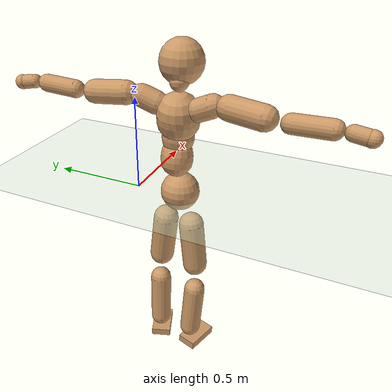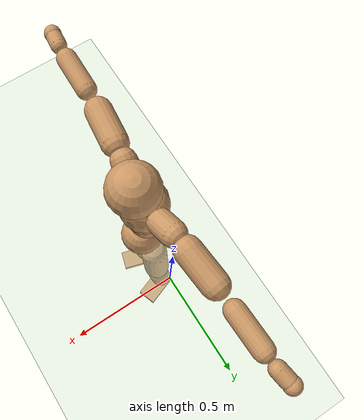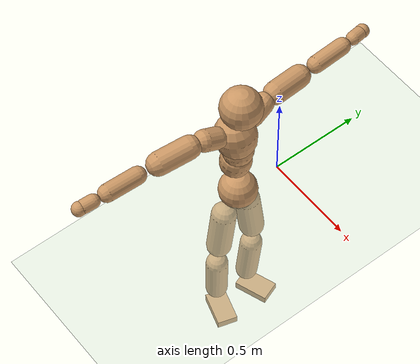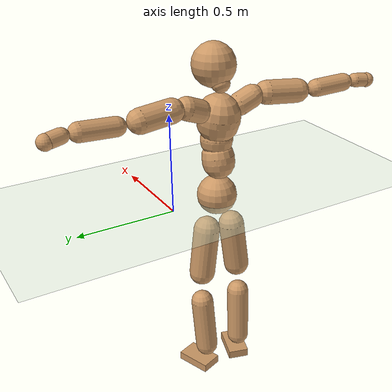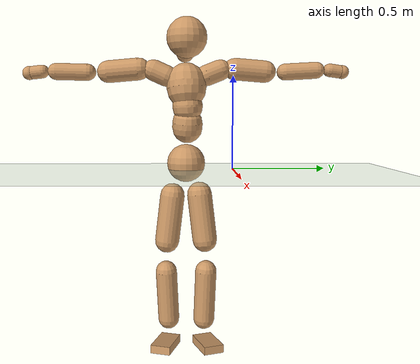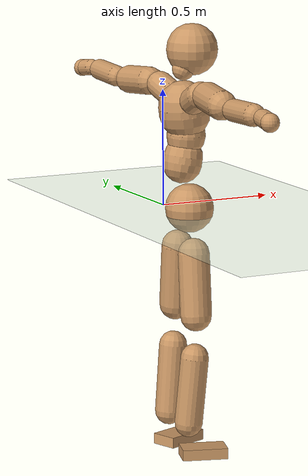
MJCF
<mujoco model="humanoid">
  <compiler coordinate="local"/>
  <default>
    <joint damping="0.0" armature="0.01" stiffness="0.0" limited="true"/>
    <geom conaffinity="1" condim="3" contype="7" margin="0.001" rgba="0.8 0.6 .4 1"/>
  </default>
  <asset>
    <texture type="skybox" builtin="gradient" rgb1=".4 .5 .6" rgb2="0 0 0" width="100" height="100"/>
    <texture builtin="flat" height="1278" mark="cross" markrgb="1 1 1" name="texgeom" random="0.01" rgb1="0.8 0.6 0.4" rgb2="0.8 0.6 0.4" type="cube" width="127"/>
    <texture builtin="checker" height="100" name="texplane" rgb1="0 0 0" rgb2="0.8 0.8 0.8" type="2d" width="100"/>
    <material name="MatPlane" reflectance="0.5" shininess="1" specular="1" texrepeat="60 60" texture="texplane"/>
    <material name="geom" texture="texgeom" texuniform="true"/>
  </asset>
  <worldbody>
    <light cutoff="100" diffuse="1 1 1" dir="-0 0 -1.3" directional="true" exponent="1" pos="0 0 1.3" specular=".1 .1 .1"/>
    <geom conaffinity="1" condim="3" name="floor" pos="0 0 0" rgba="0.8 0.9 0.8 1" size="100 100 .2" type="plane" material="MatPlane"/>
    <body name="Pelvis" pos="-0.0015 -0.252 0.031">
      <freejoint name="Pelvis"/>
      <geom type="sphere" contype="1" conaffinity="1" density="500" size="0.1030" pos="0.0000 0.0000 0.0000" name="Pelvis"/>
      <body name="L_Hip" pos="-0.02 0.0638 -0.0877">
        <joint name="L_Hip_x" type="hinge" pos="0 0 0" axis="1 0 0" stiffness="800" damping="80" armature="0.02" range="-180.0000 180.0000"/>
        <joint name="L_Hip_y" type="hinge" pos="0 0 0" axis="0 1 0" stiffness="800" damping="80" armature="0.02" range="-180.0000 180.0000"/>
        <joint name="L_Hip_z" type="hinge" pos="0 0 0" axis="0 0 1" stiffness="800" damping="80" armature="0.02" range="-180.0000 180.0000"/>
        <geom type="capsule" contype="1" conaffinity="1" density="500" fromto="0.0014 0.0102 -0.0860 0.0054 0.0407 -0.3441" size="0.0678" name="L_Hip"/>
        <body name="L_Knee" pos="0.0068 0.0508 -0.4302">
          <joint name="L_Knee_x" type="hinge" pos="0 0 0" axis="1 0 0" stiffness="800" damping="80" armature="0.02" range="-180.0000 180.0000"/>
          <joint name="L_Knee_y" type="hinge" pos="0 0 0" axis="0 1 0" stiffness="800" damping="80" armature="0.02" range="-180.0000 180.0000"/>
          <joint name="L_Knee_z" type="hinge" pos="0 0 0" axis="0 0 1" stiffness="800" damping="80" armature="0.02" range="-180.0000 180.0000"/>
          <geom type="capsule" contype="1" conaffinity="1" density="500" fromto="-0.0081 -0.0031 -0.0958 -0.0324 -0.0126 -0.3831" size="0.0597" name="L_Knee"/>
          <body name="L_Ankle" pos="-0.0405 -0.0157 -0.4789">
            <joint name="L_Ankle_x" type="hinge" pos="0 0 0" axis="1 0 0" stiffness="800" damping="80" armature="0.02" range="-180.0000 180.0000"/>
            <joint name="L_Ankle_y" type="hinge" pos="0 0 0" axis="0 1 0" stiffness="800" damping="80" armature="0.02" range="-180.0000 180.0000"/>
            <joint name="L_Ankle_z" type="hinge" pos="0 0 0" axis="0 0 1" stiffness="800" damping="80" armature="0.02" range="-180.0000 180.0000"/>
            <geom type="box" contype="1" conaffinity="1" density="500" pos="0.0652 0.0233 -0.0334" size="0.095 0.0567 0.0227" quat="0.9853 0.0000 0.0000 0.1711" name="L_Ankle"/>
            <body name="L_Toe" pos="0.1303 0.0467 -0.0668">
              <joint name="L_Toe_x" type="hinge" pos="0 0 0" axis="1 0 0" stiffness="500" damping="50" armature="0.02" range="-180.0000 180.0000"/>
              <joint name="L_Toe_y" type="hinge" pos="0 0 0" axis="0 1 0" stiffness="500" damping="50" armature="0.02" range="-180.0000 180.0000"/>
              <joint name="L_Toe_z" type="hinge" pos="0 0 0" axis="0 0 1" stiffness="500" damping="50" armature="0.02" range="-180.0000 180.0000"/>
              <geom type="box" contype="1" conaffinity="1" density="500" pos="0.0000 0.0000 0.0337" size="0.0011 0.0027 0.0012" quat="0.9845 0.0000 0.0000 0.1753" name="L_Toe"/>
            </body>
          </body>
        </body>
      </body>
      <body name="R_Hip" pos="-0.0168 -0.0653 -0.0954">
        <joint name="R_Hip_x" type="hinge" pos="0 0 0" axis="1 0 0" stiffness="800" damping="80" armature="0.02" range="-180.0000 180.0000"/>
        <joint name="R_Hip_y" type="hinge" pos="0 0 0" axis="0 1 0" stiffness="800" damping="80" armature="0.02" range="-180.0000 180.0000"/>
        <joint name="R_Hip_z" type="hinge" pos="0 0 0" axis="0 0 1" stiffness="800" damping="80" armature="0.02" range="-180.0000 180.0000"/>
        <geom type="capsule" contype="1" conaffinity="1" density="500" fromto="-0.0015 -0.0102 -0.0857 -0.0059 -0.0408 -0.3429" size="0.067" name="R_Hip"/>
        <body name="R_Knee" pos="-0.0074 -0.051 -0.4287">
          <joint name="R_Knee_x" type="hinge" pos="0 0 0" axis="1 0 0" stiffness="800" damping="80" armature="0.02" range="-180.0000 180.0000"/>
          <joint name="R_Knee_y" type="hinge" pos="0 0 0" axis="0 1 0" stiffness="800" damping="80" armature="0.02" range="-180.0000 180.0000"/>
          <joint name="R_Knee_z" type="hinge" pos="0 0 0" axis="0 0 1" stiffness="800" damping="80" armature="0.02" range="-180.0000 180.0000"/>
          <geom type="capsule" contype="1" conaffinity="1" density="500" fromto="-0.0075 0.0042 -0.0946 -0.0299 0.0166 -0.3785" size="0.0595" name="R_Knee"/>
          <body name="R_Ankle" pos="-0.0374 0.0208 -0.4731">
            <joint name="R_Ankle_x" type="hinge" pos="0 0 0" axis="1 0 0" stiffness="800" damping="80" armature="0.02" range="-180.0000 180.0000"/>
            <joint name="R_Ankle_y" type="hinge" pos="0 0 0" axis="0 1 0" stiffness="800" damping="80" armature="0.02" range="-180.0000 180.0000"/>
            <joint name="R_Ankle_z" type="hinge" pos="0 0 0" axis="0 0 1" stiffness="800" damping="80" armature="0.02" range="-180.0000 180.0000"/>
            <geom type="box" contype="1" conaffinity="1" density="500" pos="0.0694 -0.0209 -0.0346" size="0.0965 0.0557 0.023" quat="0.9894 0.0000 0.0000 -0.1455" name="R_Ankle"/>
            <body name="R_Toe" pos="0.1388 -0.0417 -0.0692">
              <joint name="R_Toe_x" type="hinge" pos="0 0 0" axis="1 0 0" stiffness="500" damping="50" armature="0.02" range="-180.0000 180.0000"/>
              <joint name="R_Toe_y" type="hinge" pos="0 0 0" axis="0 1 0" stiffness="500" damping="50" armature="0.02" range="-180.0000 180.0000"/>
              <joint name="R_Toe_z" type="hinge" pos="0 0 0" axis="0 0 1" stiffness="500" damping="50" armature="0.02" range="-180.0000 180.0000"/>
              <geom type="box" contype="1" conaffinity="1" density="500" pos="0.0000 0.0000 0.0353" size="0.0011 0.0026 0.0012" quat="0.9906 0.0000 0.0000 -0.1371" name="R_Toe"/>
            </body>
          </body>
        </body>
      </body>
      <body name="Torso" pos="-0.0423 0.0049 0.1315">
        <joint name="Torso_x" type="hinge" pos="0 0 0" axis="1 0 0" stiffness="1000" damping="100" armature="0.02" range="-180.0000 180.0000"/>
        <joint name="Torso_y" type="hinge" pos="0 0 0" axis="0 1 0" stiffness="1000" damping="100" armature="0.02" range="-180.0000 180.0000"/>
        <joint name="Torso_z" type="hinge" pos="0 0 0" axis="0 0 1" stiffness="1000" damping="100" armature="0.02" range="-180.0000 180.0000"/>
        <geom type="capsule" contype="1" conaffinity="1" density="500" fromto="0.0171 0.0024 0.0879 0.0114 0.0016 0.0586" size="0.0821" name="Torso"/>
        <body name="Spine" pos="0.0286 0.0041 0.1465">
          <joint name="Spine_x" type="hinge" pos="0 0 0" axis="1 0 0" stiffness="1000" damping="100" armature="0.02" range="-180.0000 180.0000"/>
          <joint name="Spine_y" type="hinge" pos="0 0 0" axis="0 1 0" stiffness="1000" damping="100" armature="0.02" range="-180.0000 180.0000"/>
          <joint name="Spine_z" type="hinge" pos="0 0 0" axis="0 0 1" stiffness="1000" damping="100" armature="0.02" range="-180.0000 180.0000"/>
          <geom type="capsule" contype="1" conaffinity="1" density="500" fromto="0.0013 -0.0017 0.0359 0.0009 -0.0011 0.0240" size="0.0815" name="Spine"/>
          <body name="Chest" pos="0.0022 -0.0029 0.0599">
            <joint name="Chest_x" type="hinge" pos="0 0 0" axis="1 0 0" stiffness="1000" damping="100" armature="0.02" range="-180.0000 180.0000"/>
            <joint name="Chest_y" type="hinge" pos="0 0 0" axis="0 1 0" stiffness="1000" damping="100" armature="0.02" range="-180.0000 180.0000"/>
            <joint name="Chest_z" type="hinge" pos="0 0 0" axis="0 0 1" stiffness="1000" damping="100" armature="0.02" range="-180.0000 180.0000"/>
            <geom type="capsule" contype="1" conaffinity="1" density="500" fromto="-0.0145 -0.0049 0.0951 -0.0097 -0.0033 0.0634" size="0.1073" name="Chest"/>
            <body name="Neck" pos="-0.0319 -0.0135 0.2312">
              <joint name="Neck_x" type="hinge" pos="0 0 0" axis="1 0 0" stiffness="500" damping="50" armature="0.02" range="-180.0000 180.0000"/>
              <joint name="Neck_y" type="hinge" pos="0 0 0" axis="0 1 0" stiffness="500" damping="50" armature="0.02" range="-180.0000 180.0000"/>
              <joint name="Neck_z" type="hinge" pos="0 0 0" axis="0 0 1" stiffness="500" damping="50" armature="0.02" range="-180.0000 180.0000"/>
              <geom type="capsule" contype="1" conaffinity="1" density="500" fromto="0.0113 0.0022 0.0196 0.0453 0.0089 0.0786" size="0.0472" name="Neck"/>
              <body name="Head" pos="0.0566 0.0112 0.0982">
                <joint name="Head_x" type="hinge" pos="0 0 0" axis="1 0 0" stiffness="500" damping="50" armature="0.02" range="-180.0000 180.0000"/>
                <joint name="Head_y" type="hinge" pos="0 0 0" axis="0 1 0" stiffness="500" damping="50" armature="0.02" range="-180.0000 180.0000"/>
                <joint name="Head_z" type="hinge" pos="0 0 0" axis="0 0 1" stiffness="500" damping="50" armature="0.02" range="-180.0000 180.0000"/>
                <geom type="sphere" contype="1" conaffinity="1" density="500" size="0.1083" pos="0.0000 0.0000 0.0000" name="Head"/>
              </body>
            </body>
            <body name="L_Thorax" pos="-0.0173 0.0766 0.1231">
              <joint name="L_Thorax_x" type="hinge" pos="0 0 0" axis="1 0 0" stiffness="500" damping="50" armature="0.02" range="-180.0000 180.0000"/>
              <joint name="L_Thorax_y" type="hinge" pos="0 0 0" axis="0 1 0" stiffness="500" damping="50" armature="0.02" range="-180.0000 180.0000"/>
              <joint name="L_Thorax_z" type="hinge" pos="0 0 0" axis="0 0 1" stiffness="500" damping="50" armature="0.02" range="-180.0000 180.0000"/>
              <geom type="capsule" contype="1" conaffinity="1" density="500" fromto="-0.0039 0.0255 0.0101 -0.0157 0.1018 0.0405" size="0.0569" name="L_Thorax"/>
              <body name="L_Shoulder" pos="-0.0196 0.1273 0.0507">
                <joint name="L_Shoulder_x" type="hinge" pos="0 0 0" axis="1 0 0" stiffness="500" damping="50" armature="0.02" range="-720.0000 720.0000"/>
                <joint name="L_Shoulder_y" type="hinge" pos="0 0 0" axis="0 1 0" stiffness="500" damping="50" armature="0.02" range="-720.0000 720.0000"/>
                <joint name="L_Shoulder_z" type="hinge" pos="0 0 0" axis="0 0 1" stiffness="500" damping="50" armature="0.02" range="-720.0000 720.0000"/>
                <geom type="capsule" contype="1" conaffinity="1" density="500" fromto="-0.0052 0.0552 -0.0041 -0.0209 0.2208 -0.0165" size="0.0597" name="L_Shoulder"/>
                <body name="L_Elbow" pos="-0.0262 0.276 -0.0207">
                  <joint name="L_Elbow_x" type="hinge" pos="0 0 0" axis="1 0 0" stiffness="500" damping="50" armature="0.02" range="-720.0000 720.0000"/>
                  <joint name="L_Elbow_y" type="hinge" pos="0 0 0" axis="0 1 0" stiffness="500" damping="50" armature="0.02" range="-720.0000 720.0000"/>
                  <joint name="L_Elbow_z" type="hinge" pos="0 0 0" axis="0 0 1" stiffness="500" damping="50" armature="0.02" range="-720.0000 720.0000"/>
                  <geom type="capsule" contype="1" conaffinity="1" density="500" fromto="-0.0012 0.0570 0.0031 -0.0048 0.2281 0.0125" size="0.0451" name="L_Elbow"/>
                  <body name="L_Wrist" pos="-0.006 0.2852 0.0156">
                    <joint name="L_Wrist_x" type="hinge" pos="0 0 0" axis="1 0 0" stiffness="300" damping="30" armature="0.02" range="-180.0000 180.0000"/>
                    <joint name="L_Wrist_y" type="hinge" pos="0 0 0" axis="0 1 0" stiffness="300" damping="30" armature="0.02" range="-180.0000 180.0000"/>
                    <joint name="L_Wrist_z" type="hinge" pos="0 0 0" axis="0 0 1" stiffness="300" damping="30" armature="0.02" range="-180.0000 180.0000"/>
                    <geom type="capsule" contype="1" conaffinity="1" density="500" fromto="-0.0033 0.0181 -0.0023 -0.0131 0.0725 -0.0091" size="0.0357" name="L_Wrist"/>
                    <body name="L_Hand" pos="-0.0164 0.0907 -0.0114">
                      <joint name="L_Hand_x" type="hinge" pos="0 0 0" axis="1 0 0" stiffness="300" damping="30" armature="0.02" range="-180.0000 180.0000"/>
                      <joint name="L_Hand_y" type="hinge" pos="0 0 0" axis="0 1 0" stiffness="300" damping="30" armature="0.02" range="-180.0000 180.0000"/>
                      <joint name="L_Hand_z" type="hinge" pos="0 0 0" axis="0 0 1" stiffness="300" damping="30" armature="0.02" range="-180.0000 180.0000"/>
                      <geom type="sphere" contype="1" conaffinity="1" density="500" size="0.0372" pos="0.0000 0.0000 0.0000" name="L_Hand"/>
                    </body>
                  </body>
                </body>
              </body>
            </body>
            <body name="R_Thorax" pos="-0.0235 -0.0878 0.121">
              <joint name="R_Thorax_x" type="hinge" pos="0 0 0" axis="1 0 0" stiffness="500" damping="50" armature="0.02" range="-180.0000 180.0000"/>
              <joint name="R_Thorax_y" type="hinge" pos="0 0 0" axis="0 1 0" stiffness="500" damping="50" armature="0.02" range="-180.0000 180.0000"/>
              <joint name="R_Thorax_z" type="hinge" pos="0 0 0" axis="0 0 1" stiffness="500" damping="50" armature="0.02" range="-180.0000 180.0000"/>
              <geom type="capsule" contype="1" conaffinity="1" density="500" fromto="-0.0017 -0.0237 0.0107 -0.0069 -0.0950 0.0428" size="0.057" name="R_Thorax"/>
              <body name="R_Shoulder" pos="-0.0087 -0.1187 0.0535">
                <joint name="R_Shoulder_x" type="hinge" pos="0 0 0" axis="1 0 0" stiffness="500" damping="50" armature="0.02" range="-720.0000 720.0000"/>
                <joint name="R_Shoulder_y" type="hinge" pos="0 0 0" axis="0 1 0" stiffness="500" damping="50" armature="0.02" range="-720.0000 720.0000"/>
                <joint name="R_Shoulder_z" type="hinge" pos="0 0 0" axis="0 0 1" stiffness="500" damping="50" armature="0.02" range="-720.0000 720.0000"/>
                <geom type="capsule" contype="1" conaffinity="1" density="500" fromto="-0.0071 -0.0564 -0.0042 -0.0283 -0.2256 -0.0169" size="0.0605" name="R_Shoulder"/>
                <body name="R_Elbow" pos="-0.0353 -0.282 -0.0211">
                  <joint name="R_Elbow_x" type="hinge" pos="0 0 0" axis="1 0 0" stiffness="500" damping="50" armature="0.02" range="-720.0000 720.0000"/>
                  <joint name="R_Elbow_y" type="hinge" pos="0 0 0" axis="0 1 0" stiffness="500" damping="50" armature="0.02" range="-720.0000 720.0000"/>
                  <joint name="R_Elbow_z" type="hinge" pos="0 0 0" axis="0 0 1" stiffness="500" damping="50" armature="0.02" range="-720.0000 720.0000"/>
                  <geom type="capsule" contype="1" conaffinity="1" density="500" fromto="-0.0012 -0.0579 0.0015 -0.0048 -0.2315 0.0061" size="0.0456" name="R_Elbow"/>
                  <body name="R_Wrist" pos="-0.0061 -0.2894 0.0076">
                    <joint name="R_Wrist_x" type="hinge" pos="0 0 0" axis="1 0 0" stiffness="300" damping="30" armature="0.02" range="-180.0000 180.0000"/>
                    <joint name="R_Wrist_y" type="hinge" pos="0 0 0" axis="0 1 0" stiffness="300" damping="30" armature="0.02" range="-180.0000 180.0000"/>
                    <joint name="R_Wrist_z" type="hinge" pos="0 0 0" axis="0 0 1" stiffness="300" damping="30" armature="0.02" range="-180.0000 180.0000"/>
                    <geom type="capsule" contype="1" conaffinity="1" density="500" fromto="-0.0021 -0.0186 -0.0018 -0.0085 -0.0742 -0.0073" size="0.0362" name="R_Wrist"/>
                    <body name="R_Hand" pos="-0.0107 -0.0928 -0.0091">
                      <joint name="R_Hand_x" type="hinge" pos="0 0 0" axis="1 0 0" stiffness="300" damping="30" armature="0.02" range="-180.0000 180.0000"/>
                      <joint name="R_Hand_y" type="hinge" pos="0 0 0" axis="0 1 0" stiffness="300" damping="30" armature="0.02" range="-180.0000 180.0000"/>
                      <joint name="R_Hand_z" type="hinge" pos="0 0 0" axis="0 0 1" stiffness="300" damping="30" armature="0.02" range="-180.0000 180.0000"/>
                      <geom type="sphere" contype="1" conaffinity="1" density="500" size="0.0377" pos="0.0000 0.0000 0.0000" name="R_Hand"/>
                    </body>
                  </body>
                </body>
              </body>
            </body>
          </body>
        </body>
      </body>
    </body>
  </worldbody>
  <actuator>
    <motor name="L_Hip_x" joint="L_Hip_x" gear="500"/>
    <motor name="L_Hip_y" joint="L_Hip_y" gear="500"/>
    <motor name="L_Hip_z" joint="L_Hip_z" gear="500"/>
    <motor name="L_Knee_x" joint="L_Knee_x" gear="500"/>
    <motor name="L_Knee_y" joint="L_Knee_y" gear="500"/>
    <motor name="L_Knee_z" joint="L_Knee_z" gear="500"/>
    <motor name="L_Ankle_x" joint="L_Ankle_x" gear="500"/>
    <motor name="L_Ankle_y" joint="L_Ankle_y" gear="500"/>
    <motor name="L_Ankle_z" joint="L_Ankle_z" gear="500"/>
    <motor name="L_Toe_x" joint="L_Toe_x" gear="500"/>
    <motor name="L_Toe_y" joint="L_Toe_y" gear="500"/>
    <motor name="L_Toe_z" joint="L_Toe_z" gear="500"/>
    <motor name="R_Hip_x" joint="R_Hip_x" gear="500"/>
    <motor name="R_Hip_y" joint="R_Hip_y" gear="500"/>
    <motor name="R_Hip_z" joint="R_Hip_z" gear="500"/>
    <motor name="R_Knee_x" joint="R_Knee_x" gear="500"/>
    <motor name="R_Knee_y" joint="R_Knee_y" gear="500"/>
    <motor name="R_Knee_z" joint="R_Knee_z" gear="500"/>
    <motor name="R_Ankle_x" joint="R_Ankle_x" gear="500"/>
    <motor name="R_Ankle_y" joint="R_Ankle_y" gear="500"/>
    <motor name="R_Ankle_z" joint="R_Ankle_z" gear="500"/>
    <motor name="R_Toe_x" joint="R_Toe_x" gear="500"/>
    <motor name="R_Toe_y" joint="R_Toe_y" gear="500"/>
    <motor name="R_Toe_z" joint="R_Toe_z" gear="500"/>
    <motor name="Torso_x" joint="Torso_x" gear="500"/>
    <motor name="Torso_y" joint="Torso_y" gear="500"/>
    <motor name="Torso_z" joint="Torso_z" gear="500"/>
    <motor name="Spine_x" joint="Spine_x" gear="500"/>
    <motor name="Spine_y" joint="Spine_y" gear="500"/>
    <motor name="Spine_z" joint="Spine_z" gear="500"/>
    <motor name="Chest_x" joint="Chest_x" gear="500"/>
    <motor name="Chest_y" joint="Chest_y" gear="500"/>
    <motor name="Chest_z" joint="Chest_z" gear="500"/>
    <motor name="Neck_x" joint="Neck_x" gear="500"/>
    <motor name="Neck_y" joint="Neck_y" gear="500"/>
    <motor name="Neck_z" joint="Neck_z" gear="500"/>
    <motor name="Head_x" joint="Head_x" gear="500"/>
    <motor name="Head_y" joint="Head_y" gear="500"/>
    <motor name="Head_z" joint="Head_z" gear="500"/>
    <motor name="L_Thorax_x" joint="L_Thorax_x" gear="500"/>
    <motor name="L_Thorax_y" joint="L_Thorax_y" gear="500"/>
    <motor name="L_Thorax_z" joint="L_Thorax_z" gear="500"/>
    <motor name="L_Shoulder_x" joint="L_Shoulder_x" gear="500"/>
    <motor name="L_Shoulder_y" joint="L_Shoulder_y" gear="500"/>
    <motor name="L_Shoulder_z" joint="L_Shoulder_z" gear="500"/>
    <motor name="L_Elbow_x" joint="L_Elbow_x" gear="500"/>
    <motor name="L_Elbow_y" joint="L_Elbow_y" gear="500"/>
    <motor name="L_Elbow_z" joint="L_Elbow_z" gear="500"/>
    <motor name="L_Wrist_x" joint="L_Wrist_x" gear="500"/>
    <motor name="L_Wrist_y" joint="L_Wrist_y" gear="500"/>
    <motor name="L_Wrist_z" joint="L_Wrist_z" gear="500"/>
    <motor name="L_Hand_x" joint="L_Hand_x" gear="500"/>
    <motor name="L_Hand_y" joint="L_Hand_y" gear="500"/>
    <motor name="L_Hand_z" joint="L_Hand_z" gear="500"/>
    <motor name="R_Thorax_x" joint="R_Thorax_x" gear="500"/>
    <motor name="R_Thorax_y" joint="R_Thorax_y" gear="500"/>
    <motor name="R_Thorax_z" joint="R_Thorax_z" gear="500"/>
    <motor name="R_Shoulder_x" joint="R_Shoulder_x" gear="500"/>
    <motor name="R_Shoulder_y" joint="R_Shoulder_y" gear="500"/>
    <motor name="R_Shoulder_z" joint="R_Shoulder_z" gear="500"/>
    <motor name="R_Elbow_x" joint="R_Elbow_x" gear="500"/>
    <motor name="R_Elbow_y" joint="R_Elbow_y" gear="500"/>
    <motor name="R_Elbow_z" joint="R_Elbow_z" gear="500"/>
    <motor name="R_Wrist_x" joint="R_Wrist_x" gear="500"/>
    <motor name="R_Wrist_y" joint="R_Wrist_y" gear="500"/>
    <motor name="R_Wrist_z" joint="R_Wrist_z" gear="500"/>
    <motor name="R_Hand_x" joint="R_Hand_x" gear="500"/>
    <motor name="R_Hand_y" joint="R_Hand_y" gear="500"/>
    <motor name="R_Hand_z" joint="R_Hand_z" gear="500"/>
  </actuator>
  <contact>
    <exclude body1="Torso" body2="Chest"/>
    <exclude body1="Head" body2="Chest"/>
    <exclude body1="R_Knee" body2="R_Toe"/>
    <exclude body1="R_Knee" body2="L_Ankle"/>
    <exclude body1="R_Knee" body2="L_Toe"/>
    <exclude body1="L_Knee" body2="L_Toe"/>
    <exclude body1="L_Knee" body2="R_Ankle"/>
    <exclude body1="L_Knee" body2="R_Toe"/>
    <exclude body1="L_Shoulder" body2="Chest"/>
    <exclude body1="R_Shoulder" body2="Chest"/>
  </contact>
  <sensor/>
  <size njmax="700" nconmax="700"/>
</mujoco>
